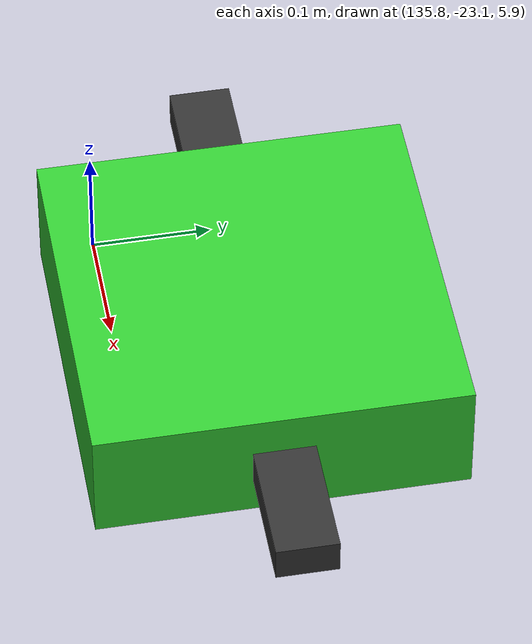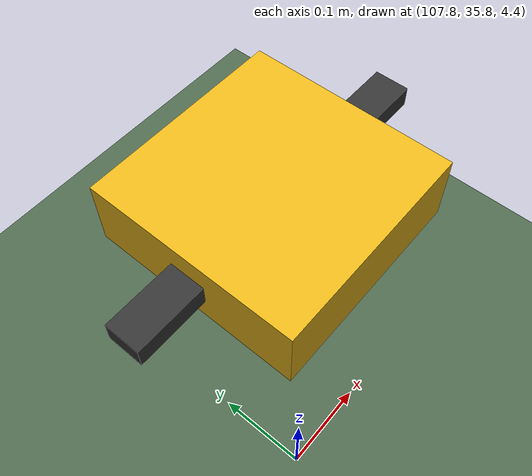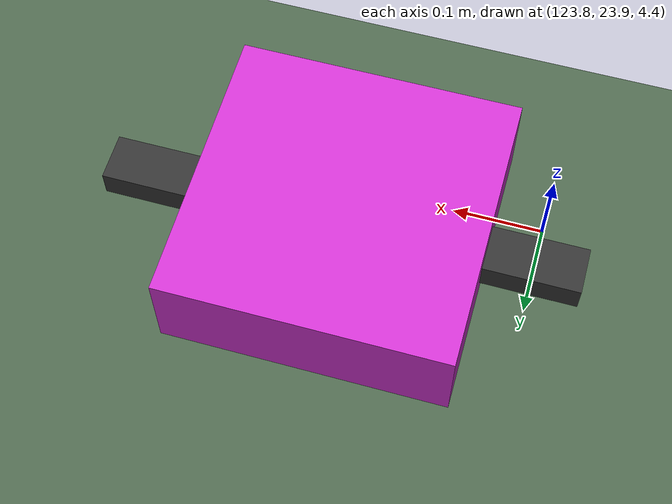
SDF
<?xml version="1.0" ?>
  <sdf version="1.9">
    <world name="riposte_swarm">
      <physics name="1ms" type="ignored">
        <max_step_size>0.004</max_step_size>
        <real_time_factor>1.0</real_time_factor>
      </physics>

      <plugin filename="gz-sim-physics-system" name="gz::sim::systems::Physics"/>
      <plugin filename="gz-sim-user-commands-system"
              name="gz::sim::systems::UserCommands"/>
      <plugin filename="gz-sim-scene-broadcaster-system"
              name="gz::sim::systems::SceneBroadcaster"/>
      <plugin filename="gz-sim-sensors-system" name="gz::sim::systems::Sensors">
        <render_engine>ogre2</render_engine>
      </plugin>
      <!-- x500 sensor feeds. A world listing its own plugins does not inherit the
           server defaults, so each system the vehicle needs must appear here. -->
      <plugin filename="gz-sim-imu-system" name="gz::sim::systems::Imu"/>
      <plugin filename="gz-sim-magnetometer-system" name="gz::sim::systems::Magnetometer"/>
      <plugin filename="gz-sim-air-pressure-system"
              name="gz::sim::systems::AirPressure"/>
      <plugin filename="gz-sim-navsat-system" name="gz::sim::systems::NavSat"/>

      <!-- PX4 GPS origin (matches PX4 default SITL home). -->
      <spherical_coordinates>
        <surface_model>EARTH_WGS84</surface_model>
        <world_frame_orientation>ENU</world_frame_orientation>
        <latitude_deg>47.397971057728974</latitude_deg>
        <longitude_deg>8.546163739800146</longitude_deg>
        <elevation>0</elevation>
      </spherical_coordinates>

      <light type="directional" name="sun">
        <cast_shadows>true</cast_shadows>
        <pose>0 0 10 0 0 0</pose>
        <diffuse>0.8 0.8 0.8 1</diffuse>
        <specular>0.2 0.2 0.2 1</specular>
        <direction>-0.5 0.1 -0.9</direction>
      </light>
      <model name="ground_plane">
        <static>true</static>
        <link name="link">
          <collision name="collision">
            <geometry><plane><normal>0 0 1</normal><size>200 200</size></plane></geometry>
          </collision>
          <visual name="visual">
            <geometry><plane><normal>0 0 1</normal><size>200 200</size></plane></geometry>
            <material>
              <ambient>0.3 0.35 0.3 1</ambient>
              <diffuse>0.3 0.4 0.3 1</diffuse>
            </material>
          </visual>
        </link>
      </model>

      <!-- drone_1: start (110.0 -36.0 5.0) ENU, velocity (-2.0 0.75 0.0) m/s, speed 2.14 m/s -->
      <model name="drone_1">
        <pose>110.0 -36.0 5.0 0 0 0</pose>
        <link name="body">
        <gravity>false</gravity>
          <inertial>
            <mass>0.5</mass>
            <inertia><ixx>0.01</ixx><iyy>0.01</iyy><izz>0.02</izz>
                     <ixy>0</ixy><ixz>0</ixz><iyz>0</iyz></inertia>
          </inertial>
          <visual name="core">
            <geometry><box><size>0.30 0.30 0.10</size></box></geometry>
            <material>
              <ambient>0.9 0.1 0.1 1</ambient>
              <diffuse>0.9 0.1 0.1 1</diffuse>
            </material>
          </visual>
          <visual name="arm">
            <geometry><box><size>0.5 0.05 0.03</size></box></geometry>
            <material><diffuse>0.2 0.2 0.2 1</diffuse></material>
          </visual>
        </link>
        <plugin filename="gz-sim-velocity-control-system"
                name="gz::sim::systems::VelocityControl">
          <initial_linear>-2.0 0.75 0.0</initial_linear>
          <initial_angular>0 0 0</initial_angular>
        </plugin>
        </model>

      <!-- drone_2: start (122.0 0.0 5.5) ENU, velocity (-2.25 0.0 0.0) m/s, speed 2.25 m/s -->
      <model name="drone_2">
        <pose>122.0 0.0 5.5 0 0 0</pose>
        <link name="body">
        <gravity>false</gravity>
          <inertial>
            <mass>0.5</mass>
            <inertia><ixx>0.01</ixx><iyy>0.01</iyy><izz>0.02</izz>
                     <ixy>0</ixy><ixz>0</ixz><iyz>0</iyz></inertia>
          </inertial>
          <visual name="core">
            <geometry><box><size>0.30 0.30 0.10</size></box></geometry>
            <material>
              <ambient>0.1 0.5 0.9 1</ambient>
              <diffuse>0.1 0.5 0.9 1</diffuse>
            </material>
          </visual>
          <visual name="arm">
            <geometry><box><size>0.5 0.05 0.03</size></box></geometry>
            <material><diffuse>0.2 0.2 0.2 1</diffuse></material>
          </visual>
        </link>
        <plugin filename="gz-sim-velocity-control-system"
                name="gz::sim::systems::VelocityControl">
          <initial_linear>-2.25 0.0 0.0</initial_linear>
          <initial_angular>0 0 0</initial_angular>
        </plugin>
        </model>

      <!-- drone_3: start (108.0 36.0 4.5) ENU, velocity (-2.0 -0.75 0.0) m/s, speed 2.14 m/s -->
      <model name="drone_3">
        <pose>108.0 36.0 4.5 0 0 0</pose>
        <link name="body">
        <gravity>false</gravity>
          <inertial>
            <mass>0.5</mass>
            <inertia><ixx>0.01</ixx><iyy>0.01</iyy><izz>0.02</izz>
                     <ixy>0</ixy><ixz>0</ixz><iyz>0</iyz></inertia>
          </inertial>
          <visual name="core">
            <geometry><box><size>0.30 0.30 0.10</size></box></geometry>
            <material>
              <ambient>0.9 0.7 0.1 1</ambient>
              <diffuse>0.9 0.7 0.1 1</diffuse>
            </material>
          </visual>
          <visual name="arm">
            <geometry><box><size>0.5 0.05 0.03</size></box></geometry>
            <material><diffuse>0.2 0.2 0.2 1</diffuse></material>
          </visual>
        </link>
        <plugin filename="gz-sim-velocity-control-system"
                name="gz::sim::systems::VelocityControl">
          <initial_linear>-2.0 -0.75 0.0</initial_linear>
          <initial_angular>0 0 0</initial_angular>
        </plugin>
        </model>

      <!-- drone_4: start (136.0 -23.0 6.0) ENU, velocity (-2.5 0.5 0.0) m/s, speed 2.55 m/s -->
      <model name="drone_4">
        <pose>136.0 -23.0 6.0 0 0 0</pose>
        <link name="body">
        <gravity>false</gravity>
          <inertial>
            <mass>0.5</mass>
            <inertia><ixx>0.01</ixx><iyy>0.01</iyy><izz>0.02</izz>
                     <ixy>0</ixy><ixz>0</ixz><iyz>0</iyz></inertia>
          </inertial>
          <visual name="core">
            <geometry><box><size>0.30 0.30 0.10</size></box></geometry>
            <material>
              <ambient>0.2 0.8 0.2 1</ambient>
              <diffuse>0.2 0.8 0.2 1</diffuse>
            </material>
          </visual>
          <visual name="arm">
            <geometry><box><size>0.5 0.05 0.03</size></box></geometry>
            <material><diffuse>0.2 0.2 0.2 1</diffuse></material>
          </visual>
        </link>
        <plugin filename="gz-sim-velocity-control-system"
                name="gz::sim::systems::VelocityControl">
          <initial_linear>-2.5 0.5 0.0</initial_linear>
          <initial_angular>0 0 0</initial_angular>
        </plugin>
        </model>

      <!-- drone_5: start (124.0 24.0 4.5) ENU, velocity (-2.25 -0.5 0.0) m/s, speed 2.30 m/s -->
      <model name="drone_5">
        <pose>124.0 24.0 4.5 0 0 0</pose>
        <link name="body">
        <gravity>false</gravity>
          <inertial>
            <mass>0.5</mass>
            <inertia><ixx>0.01</ixx><iyy>0.01</iyy><izz>0.02</izz>
                     <ixy>0</ixy><ixz>0</ixz><iyz>0</iyz></inertia>
          </inertial>
          <visual name="core">
            <geometry><box><size>0.30 0.30 0.10</size></box></geometry>
            <material>
              <ambient>0.8 0.2 0.8 1</ambient>
              <diffuse>0.8 0.2 0.8 1</diffuse>
            </material>
          </visual>
          <visual name="arm">
            <geometry><box><size>0.5 0.05 0.03</size></box></geometry>
            <material><diffuse>0.2 0.2 0.2 1</diffuse></material>
          </visual>
        </link>
        <plugin filename="gz-sim-velocity-control-system"
                name="gz::sim::systems::VelocityControl">
          <initial_linear>-2.25 -0.5 0.0</initial_linear>
          <initial_angular>0 0 0</initial_angular>
        </plugin>
        </model>
    </world>
</sdf>
